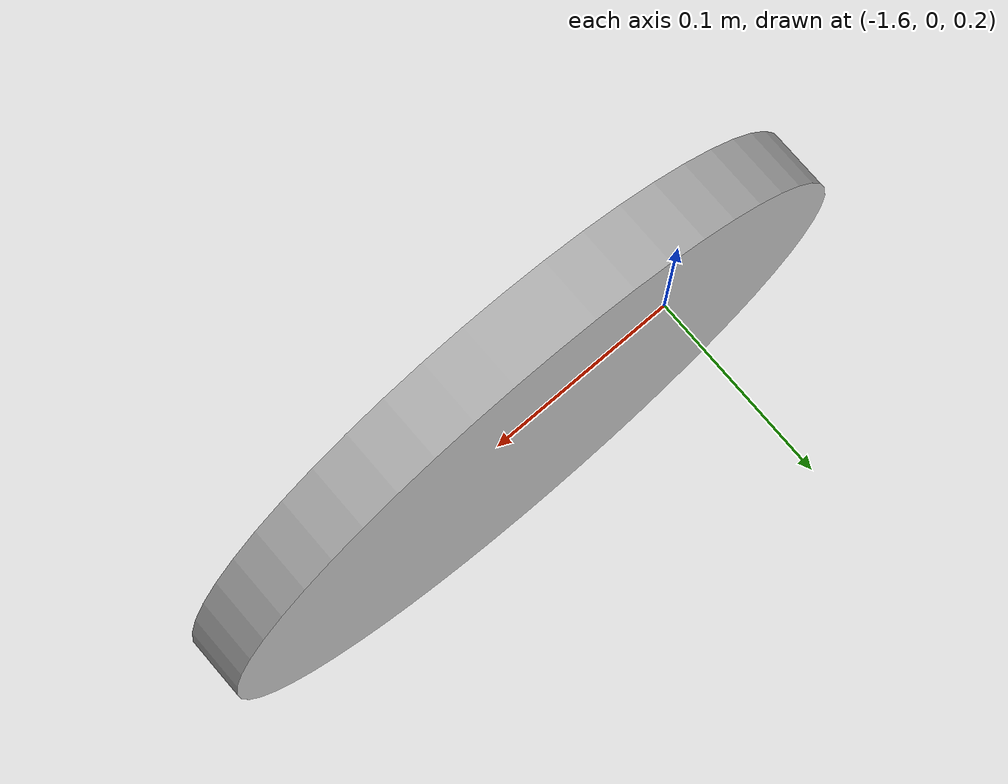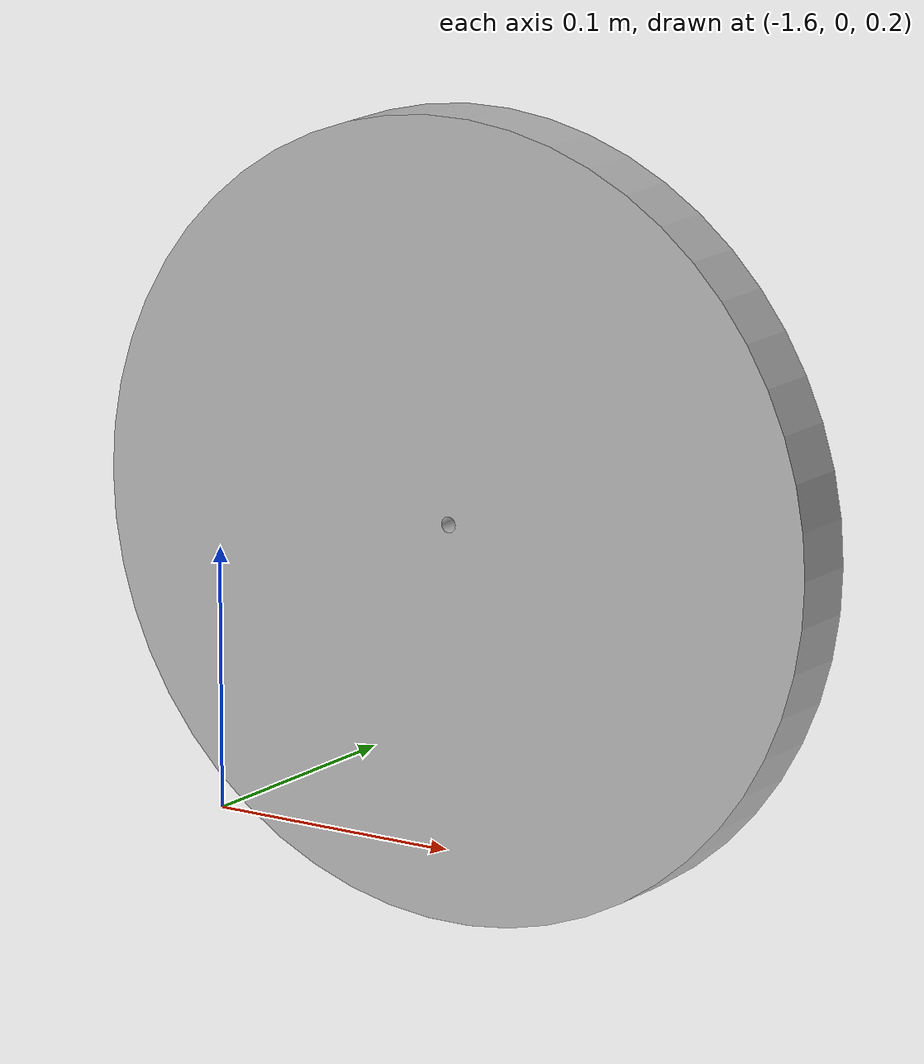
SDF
<?xml version="1.0" ?>
<sdf version="1.5">
  <model name="roue_terrain">
    <static>true</static>
    <link name="link">
      <collision name="roue_terrain">
        <pose>0 0 0 0 0 0</pose>
        <geometry>
          <mesh>
            <uri>model://roue/roue.dae</uri>
            <scale>1.0 1.0 1.0</scale>
          </mesh>
        </geometry>
      </collision>

      <visual name="rock">
        <cast_shadows>true</cast_shadows>
        <pose>0 0 0 0 0 0</pose>
        <geometry>
          <mesh>
            <uri>model://roue/roue.dae</uri>
            <scale>1.0 1.0 1.0</scale>
          </mesh>
        </geometry>

      </visual>
    </link>
  </model>
</sdf>
